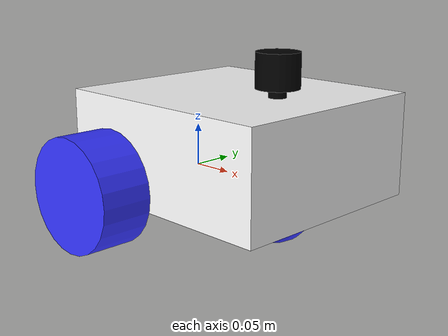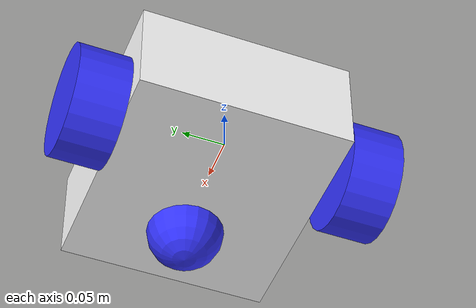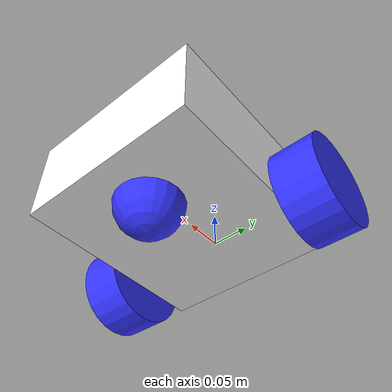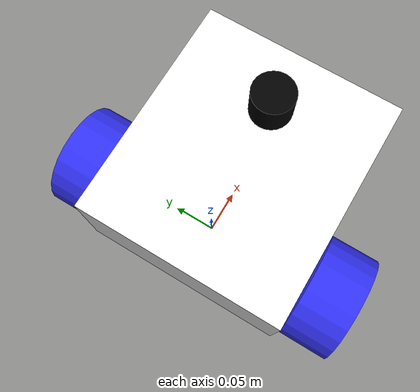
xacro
<?xml version="1.0"?>
<robot xmlns:xacro="http://www.ros.org/wiki/xacro"  name="robot">

    <xacro:arg name="use_ros2_control" default="true"/>
    <xacro:arg name="sim_mode" default="false"/>

    <xacro:include filename="robot_core.xacro" />

    <xacro:if value="$(arg use_ros2_control)">
        <xacro:include filename="ros2_control.xacro" />
    </xacro:if>
    <xacro:unless value="$(arg use_ros2_control)">
        <xacro:include filename="gazebo_control.xacro" />
    </xacro:unless>

    <xacro:include filename="lidar.xacro" />

</robot>

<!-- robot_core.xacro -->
<robot xmlns:xacro="http://www.ros.org/wiki/xacro" >

 <xacro:include filename="inertial_macros.xacro"/>

    <xacro:property name="chassis_length"           value="0.280"/>
    <xacro:property name="chassis_width"            value="0.250"/>
    <xacro:property name="chassis_height"           value="0.120"/>
    <xacro:property name="chassis_mass"             value="0.700"/>

    <xacro:property name="wheel_radius"             value="0.065"/>
    <xacro:property name="wheel_thickness"          value="0.060"/>
    <xacro:property name="wheel_mass"               value="0.050"/>
    <xacro:property name="wheel_offset_x"           value="0.073"/>
    <xacro:property name="wheel_offset_y"           value="0.160"/>
    <xacro:property name="wheel_offset_z"           value="0.020"/>

    <xacro:property name="caster_wheel_radius"      value="${wheel_radius - wheel_offset_z}"/>
    <xacro:property name="caster_wheel_mass"        value="0.010"/>
    <xacro:property name="caster_wheel_offset_x"    value="0.200"/>
    <xacro:property name="caster_wheel_offset_z"    value="${wheel_offset_z - wheel_radius + caster_wheel_radius}"/>

    <!-- Colors -->

    <material name="white">
        <color rgba="1 1 1 1" />
    </material>

    <material name="orange">
        <color rgba="1 0.3 0.1 1"/>
    </material>

    <material name="blue">
        <color rgba="0.2 0.2 1 1"/>
    </material>

    <material name="black">
        <color rgba="0 0 0 1"/>
    </material>

    <material name="red">
        <color rgba="1 0 0 1"/>
    </material>

 <!-- BASE LINK -->

    <link name="base_link">

    </link>

    <!-- BASE_FOOTPRINT LINK -->

    <joint name="base_footprint_joint" type="fixed">
        <parent link="base_link"/>
        <child link="base_footprint"/>
        <origin xyz="0 0 0" rpy="0 0 0"/>
    </joint>

    <link name="base_footprint">
    </link>

    <!-- CHASSIS LINK -->

    <joint name="chassis_joint" type="fixed">
        <parent link="base_link"/>
        <child link="chassis"/>
        <origin xyz="${-wheel_offset_x} 0 ${-wheel_offset_z}"/>
    </joint>

    <link name="chassis">
        <visual>
            <origin xyz="${chassis_length/2} 0 ${chassis_height/2}"/>
            <geometry>
                <box size="${chassis_length} ${chassis_width} ${chassis_height}"/>
            </geometry>
            <material name="white"/>
        </visual>
        <collision>
            <origin xyz="${chassis_length/2} 0 ${chassis_height/2}"/>
            <geometry>
                <box size="${chassis_length} ${chassis_width} ${chassis_height}"/>
            </geometry>
        </collision>
        <xacro:inertial_box mass="0.5" x="${chassis_length}" y="${chassis_width}" z="${chassis_height}">
            <origin xyz="${chassis_length/2} 0 ${chassis_height/2}" rpy="0 0 0"/>
        </xacro:inertial_box>
    </link>

    <gazebo reference="chassis">
        <material>Gazebo/white</material>
    </gazebo>

    <!-- LEFT WHEEL LINK -->

    <joint name="left_wheel_joint" type="continuous">
        <parent link="base_link"/>
        <child link="left_wheel"/>
        <origin xyz="0 ${wheel_offset_y} 0" rpy="-${pi/2} 0 0" />
        <axis xyz="0 0 1"/>
    </joint>

    <link name="left_wheel">
        <visual>
            <geometry>
                <cylinder radius="${wheel_radius}" length="${wheel_thickness}"/>
            </geometry>
            <material name="blue"/>
        </visual>
        <collision>
            <geometry>
                <sphere radius="${wheel_radius}"/>
            </geometry>
        </collision>
        <xacro:inertial_cylinder mass="${wheel_mass}" length="${wheel_thickness}" radius="${wheel_radius}">
            <origin xyz="0 0 0" rpy="0 0 0"/>
        </xacro:inertial_cylinder>
    </link>

    <gazebo reference="left_wheel">
        <material>Gazebo/Blue</material>
    </gazebo>

    <!-- RIGHT WHEEL LINK -->

    <joint name="right_wheel_joint" type="continuous">
        <parent link="base_link"/>
        <child link="right_wheel"/>
        <origin xyz="0 ${-wheel_offset_y} 0" rpy="${pi/2} 0 0" />
        <axis xyz="0 0 -1"/>
    </joint>

    <link name="right_wheel">
        <visual>
            <geometry>
                <cylinder radius="${wheel_radius}" length="${wheel_thickness}"/>
            </geometry>
            <material name="blue"/>
        </visual>
        <collision>
            <geometry>
                <sphere radius="${wheel_radius}"/>
            </geometry>
        </collision>
        <xacro:inertial_cylinder mass="${wheel_mass}" length="${wheel_thickness}" radius="${wheel_radius}">
            <origin xyz="0 0 0" rpy="0 0 0"/>
        </xacro:inertial_cylinder>
    </link>

    <gazebo reference="right_wheel">
        <material>Gazebo/Blue</material>
    </gazebo>

    <!-- CASTER WHEEL LINK -->

    <joint name="caster_wheel_joint" type="fixed">
        <parent link="chassis"/>
        <child link="caster_wheel"/>
        <origin xyz="${caster_wheel_offset_x} 0 ${caster_wheel_offset_z}"/>
    </joint>

    <link name="caster_wheel">
        <visual>
            <geometry>
                <sphere radius="${caster_wheel_radius}"/>
            </geometry>
            <material name="blue"/>
        </visual>
        <collision>
            <geometry>
                <sphere radius="${caster_wheel_radius}"/>
            </geometry>
        </collision>
        <xacro:inertial_sphere mass="${caster_wheel_mass}" radius="${caster_wheel_radius}">
            <origin xyz="0 0 0" rpy="0 0 0"/>
        </xacro:inertial_sphere>
    </link>

    <gazebo reference="caster_wheel">
        <material>Gazebo/blue</material>
        <mu1 value="0.001"/>
        <mu2 value="0.001"/>
    </gazebo>

</robot>

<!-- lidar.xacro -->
<robot xmlns:xacro="http://www.ros.org/wiki/xacro" >

    <xacro:property name="lidar_radius"             value="0.025"/>
    <xacro:property name="lidar_thickness"          value="0.040"/>
    <xacro:property name="lidar_offset_x"           value="0.200"/>
    <xacro:property name="lidar_offset_z"           value="0.150"/>

    <joint name="laser_joint" type="fixed">
        <parent link="chassis"/>
        <child link="laser_frame"/>
        <origin xyz="${lidar_offset_x} 0 ${lidar_offset_z}" rpy="0 0 0"/>
    </joint>

    <link name="laser_frame">
        <visual>
            <geometry>
                <cylinder radius="${lidar_radius}" length="${lidar_thickness}"/>
            </geometry>
            <material name="black"/>
        </visual>
        <visual>
            <origin xyz="0 0 -0.05"/>
            <geometry>
                <cylinder radius="0.01" length="0.1"/>
            </geometry>
            <material name="black"/>
        </visual>
        <collision>
            <geometry>
                <cylinder radius="${lidar_radius}" length="${lidar_thickness}"/>
            </geometry>
        </collision>
        <xacro:inertial_cylinder mass="0.1" length="${lidar_thickness}" radius="${lidar_radius}">
            <origin xyz="0 0 0" rpy="0 0 0"/>
        </xacro:inertial_cylinder>
    </link>

    <gazebo reference="laser_frame">
        <material>Gazebo/Black</material>

        <sensor name="laser" type="gpu_lidar">
            <pose> 0 0 0 0 0 0 </pose>
            <visualize>false</visualize>
            <update_rate>10</update_rate>
            <lidar>
                <scan>
                    <horizontal>
                        <samples>360</samples>
                        <min_angle>-3.14</min_angle>
                        <max_angle>3.14</max_angle>
                    </horizontal>
                </scan>
                <range>
                    <min>0.3</min>
                    <max>12</max>
                </range>
            </lidar>
            <topic>scan</topic>
            <gz_frame_id>laser_frame</gz_frame_id>
        </sensor>
    </gazebo>

</robot>
